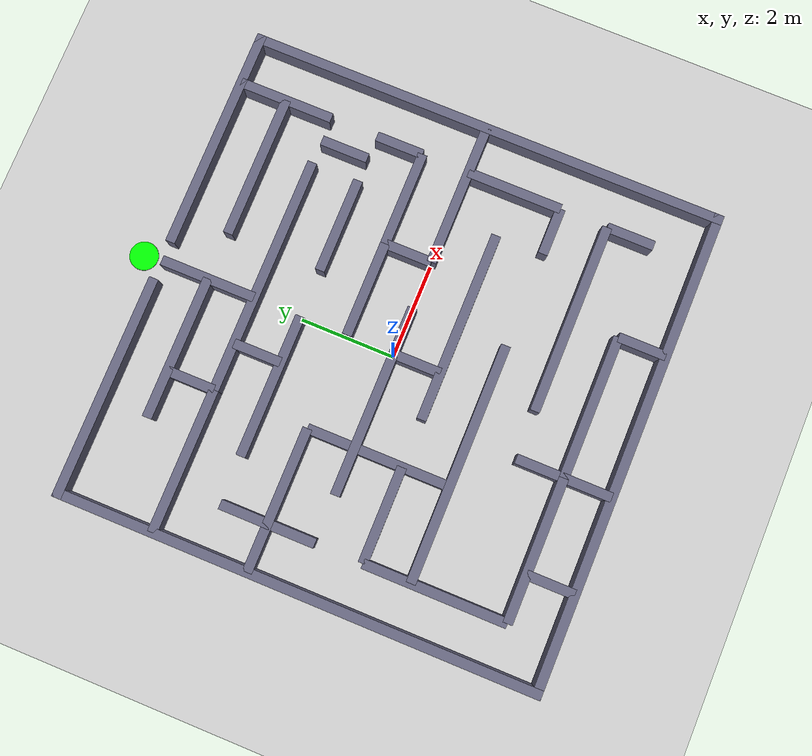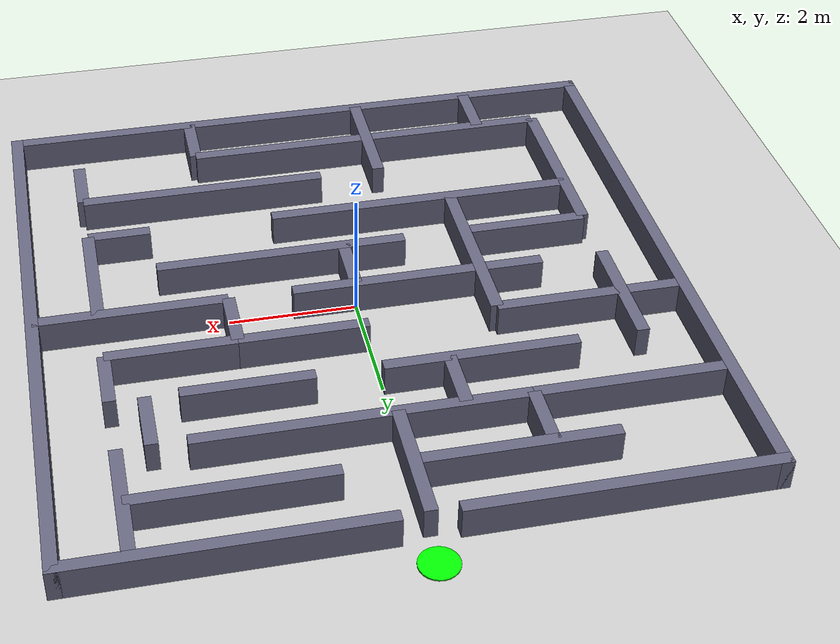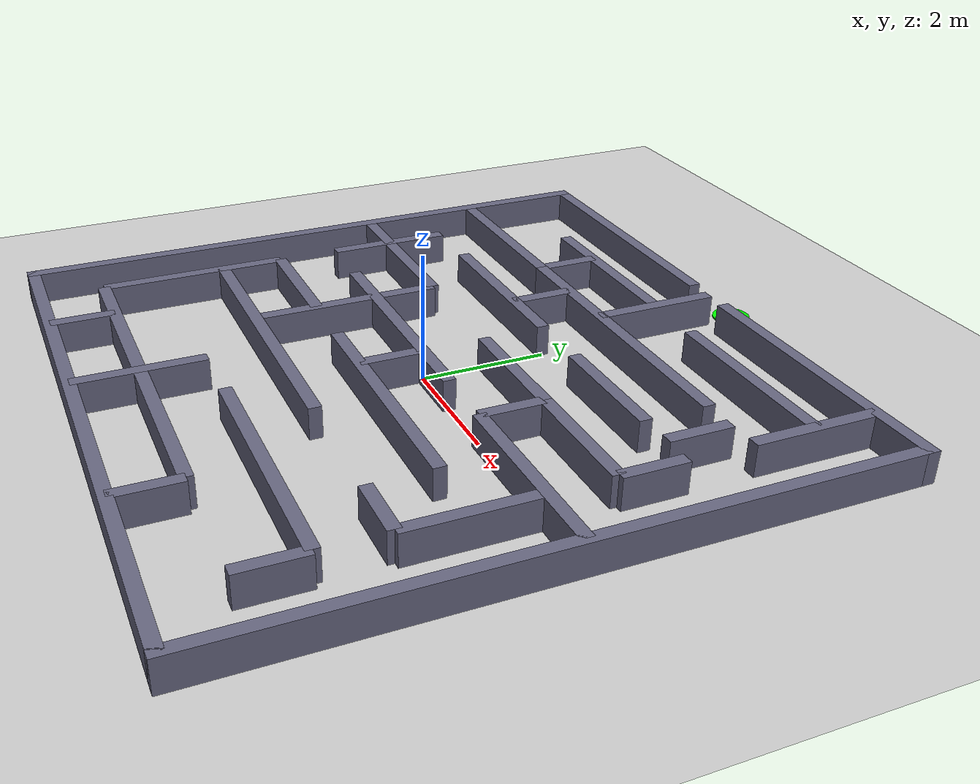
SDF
<?xml version="1.0" ?>
<sdf version="1.8">
  <world name="course_world">

    <!-- Physics (500 Hz) -->
    <physics name="500hz" type="dart">
      <max_step_size>0.002</max_step_size>
      <real_time_factor>1.0</real_time_factor>
      <real_time_update_rate>500</real_time_update_rate>
    </physics>

    <!-- Plugins -->
    <plugin filename="gz-sim-physics-system" name="gz::sim::systems::Physics"/>
    <plugin filename="gz-sim-sensors-system" name="gz::sim::systems::Sensors">
      <render_engine>ogre2</render_engine>
    </plugin>
    <plugin filename="gz-sim-user-commands-system" name="gz::sim::systems::UserCommands"/>
    <plugin filename="gz-sim-scene-broadcaster-system" name="gz::sim::systems::SceneBroadcaster"/>
    <plugin filename="gz-sim-contact-system" name="gz::sim::systems::Contact"/>

    <!-- Lighting -->
    <light type="directional" name="sun">
      <cast_shadows>false</cast_shadows>
      <pose>0 0 10 0 0 0</pose>
      <diffuse>0.8 0.8 0.8 1</diffuse>
      <specular>0.2 0.2 0.2 1</specular>
      <attenuation>
        <range>1000</range>
        <constant>0.9</constant>
        <linear>0.01</linear>
        <quadratic>0.001</quadratic>
      </attenuation>
      <direction>-0.5 0.1 -0.9</direction>
    </light>

    <!-- Ground Plane -->
    <model name="ground_plane">
      <static>true</static>
      <link name="link">
        <collision name="collision">
          <geometry>
            <plane>
              <normal>0 0 1</normal>
              <size>100 100</size>
            </plane>
          </geometry>
        </collision>
        <visual name="visual">
          <geometry>
            <plane>
              <normal>0 0 1</normal>
              <size>100 100</size>
            </plane>
          </geometry>
          <material>
            <ambient>0.8 0.8 0.8 1</ambient>
            <diffuse>0.8 0.8 0.8 1</diffuse>
            <specular>0.8 0.8 0.8 1</specular>
          </material>
        </visual>
      </link>
    </model>
    <model name="wall_1">
      <static>true</static>
      <pose>0 -5 0.25 0 0 0.0</pose>
      <link name="link">
        <collision name="collision">
          <geometry>
            <box>
              <size>10.2 0.2 0.5</size>
            </box>
          </geometry>
        </collision>
        <visual name="visual">
          <geometry>
            <box>
              <size>10.2 0.2 0.5</size>
            </box>
          </geometry>
          <material>
            <ambient>0.4 0.4 0.5 1</ambient>
            <diffuse>0.4 0.4 0.5 1</diffuse>
          </material>
        </visual>
      </link>
    </model>
    <model name="wall_2">
      <static>true</static>
      <pose>-2.75 5 0.25 0 0 0.0</pose>
      <link name="link">
        <collision name="collision">
          <geometry>
            <box>
              <size>4.7 0.2 0.5</size>
            </box>
          </geometry>
        </collision>
        <visual name="visual">
          <geometry>
            <box>
              <size>4.7 0.2 0.5</size>
            </box>
          </geometry>
          <material>
            <ambient>0.4 0.4 0.5 1</ambient>
            <diffuse>0.4 0.4 0.5 1</diffuse>
          </material>
        </visual>
      </link>
    </model>
    <model name="wall_3">
      <static>true</static>
      <pose>2.75 5 0.25 0 0 0.0</pose>
      <link name="link">
        <collision name="collision">
          <geometry>
            <box>
              <size>4.7 0.2 0.5</size>
            </box>
          </geometry>
        </collision>
        <visual name="visual">
          <geometry>
            <box>
              <size>4.7 0.2 0.5</size>
            </box>
          </geometry>
          <material>
            <ambient>0.4 0.4 0.5 1</ambient>
            <diffuse>0.4 0.4 0.5 1</diffuse>
          </material>
        </visual>
      </link>
    </model>
    <model name="wall_4">
      <static>true</static>
      <pose>-5 0 0.25 0 0 1.5708</pose>
      <link name="link">
        <collision name="collision">
          <geometry>
            <box>
              <size>10.2 0.2 0.5</size>
            </box>
          </geometry>
        </collision>
        <visual name="visual">
          <geometry>
            <box>
              <size>10.2 0.2 0.5</size>
            </box>
          </geometry>
          <material>
            <ambient>0.4 0.4 0.5 1</ambient>
            <diffuse>0.4 0.4 0.5 1</diffuse>
          </material>
        </visual>
      </link>
    </model>
    <model name="wall_5">
      <static>true</static>
      <pose>5 0 0.25 0 0 1.5708</pose>
      <link name="link">
        <collision name="collision">
          <geometry>
            <box>
              <size>10.2 0.2 0.5</size>
            </box>
          </geometry>
        </collision>
        <visual name="visual">
          <geometry>
            <box>
              <size>10.2 0.2 0.5</size>
            </box>
          </geometry>
          <material>
            <ambient>0.4 0.4 0.5 1</ambient>
            <diffuse>0.4 0.4 0.5 1</diffuse>
          </material>
        </visual>
      </link>
    </model>
    <model name="wall_6">
      <static>true</static>
      <pose>0.5 -4 0.25 0 0 0.0</pose>
      <link name="link">
        <collision name="collision">
          <geometry>
            <box>
              <size>3.0 0.2 0.5</size>
            </box>
          </geometry>
        </collision>
        <visual name="visual">
          <geometry>
            <box>
              <size>3.0 0.2 0.5</size>
            </box>
          </geometry>
          <material>
            <ambient>0.4 0.4 0.5 1</ambient>
            <diffuse>0.4 0.4 0.5 1</diffuse>
          </material>
        </visual>
      </link>
    </model>
    <model name="wall_7">
      <static>true</static>
      <pose>-2.5 -4 0.25 0 0 0.0</pose>
      <link name="link">
        <collision name="collision">
          <geometry>
            <box>
              <size>3.0 0.2 0.5</size>
            </box>
          </geometry>
        </collision>
        <visual name="visual">
          <geometry>
            <box>
              <size>3.0 0.2 0.5</size>
            </box>
          </geometry>
          <material>
            <ambient>0.4 0.4 0.5 1</ambient>
            <diffuse>0.4 0.4 0.5 1</diffuse>
          </material>
        </visual>
      </link>
    </model>
    <model name="wall_8">
      <static>true</static>
      <pose>2.0 -3 0.25 0 0 0.0</pose>
      <link name="link">
        <collision name="collision">
          <geometry>
            <box>
              <size>4.0 0.2 0.5</size>
            </box>
          </geometry>
        </collision>
        <visual name="visual">
          <geometry>
            <box>
              <size>4.0 0.2 0.5</size>
            </box>
          </geometry>
          <material>
            <ambient>0.4 0.4 0.5 1</ambient>
            <diffuse>0.4 0.4 0.5 1</diffuse>
          </material>
        </visual>
      </link>
    </model>
    <model name="wall_9">
      <static>true</static>
      <pose>-1.5 -2 0.25 0 0 0.0</pose>
      <link name="link">
        <collision name="collision">
          <geometry>
            <box>
              <size>5.0 0.2 0.5</size>
            </box>
          </geometry>
        </collision>
        <visual name="visual">
          <geometry>
            <box>
              <size>5.0 0.2 0.5</size>
            </box>
          </geometry>
          <material>
            <ambient>0.4 0.4 0.5 1</ambient>
            <diffuse>0.4 0.4 0.5 1</diffuse>
          </material>
        </visual>
      </link>
    </model>
    <model name="wall_10">
      <static>true</static>
      <pose>3.5 -2 0.25 0 0 0.0</pose>
      <link name="link">
        <collision name="collision">
          <geometry>
            <box>
              <size>1.0 0.2 0.5</size>
            </box>
          </geometry>
        </collision>
        <visual name="visual">
          <geometry>
            <box>
              <size>1.0 0.2 0.5</size>
            </box>
          </geometry>
          <material>
            <ambient>0.4 0.4 0.5 1</ambient>
            <diffuse>0.4 0.4 0.5 1</diffuse>
          </material>
        </visual>
      </link>
    </model>
    <model name="wall_11">
      <static>true</static>
      <pose>-3.0 -1 0.25 0 0 0.0</pose>
      <link name="link">
        <collision name="collision">
          <geometry>
            <box>
              <size>2.0 0.2 0.5</size>
            </box>
          </geometry>
        </collision>
        <visual name="visual">
          <geometry>
            <box>
              <size>2.0 0.2 0.5</size>
            </box>
          </geometry>
          <material>
            <ambient>0.4 0.4 0.5 1</ambient>
            <diffuse>0.4 0.4 0.5 1</diffuse>
          </material>
        </visual>
      </link>
    </model>
    <model name="wall_12">
      <static>true</static>
      <pose>1.0 -1 0.25 0 0 0.0</pose>
      <link name="link">
        <collision name="collision">
          <geometry>
            <box>
              <size>4.0 0.2 0.5</size>
            </box>
          </geometry>
        </collision>
        <visual name="visual">
          <geometry>
            <box>
              <size>4.0 0.2 0.5</size>
            </box>
          </geometry>
          <material>
            <ambient>0.4 0.4 0.5 1</ambient>
            <diffuse>0.4 0.4 0.5 1</diffuse>
          </material>
        </visual>
      </link>
    </model>
    <model name="wall_13">
      <static>true</static>
      <pose>-1.0 0 0.25 0 0 0.0</pose>
      <link name="link">
        <collision name="collision">
          <geometry>
            <box>
              <size>4.0 0.2 0.5</size>
            </box>
          </geometry>
        </collision>
        <visual name="visual">
          <geometry>
            <box>
              <size>4.0 0.2 0.5</size>
            </box>
          </geometry>
          <material>
            <ambient>0.4 0.4 0.5 1</ambient>
            <diffuse>0.4 0.4 0.5 1</diffuse>
          </material>
        </visual>
      </link>
    </model>
    <model name="wall_14">
      <static>true</static>
      <pose>3.5 0 0.25 0 0 0.0</pose>
      <link name="link">
        <collision name="collision">
          <geometry>
            <box>
              <size>3.0 0.2 0.5</size>
            </box>
          </geometry>
        </collision>
        <visual name="visual">
          <geometry>
            <box>
              <size>3.0 0.2 0.5</size>
            </box>
          </geometry>
          <material>
            <ambient>0.4 0.4 0.5 1</ambient>
            <diffuse>0.4 0.4 0.5 1</diffuse>
          </material>
        </visual>
      </link>
    </model>
    <model name="wall_15">
      <static>true</static>
      <pose>-3.5 1 0.25 0 0 0.0</pose>
      <link name="link">
        <collision name="collision">
          <geometry>
            <box>
              <size>3.0 0.2 0.5</size>
            </box>
          </geometry>
        </collision>
        <visual name="visual">
          <geometry>
            <box>
              <size>3.0 0.2 0.5</size>
            </box>
          </geometry>
          <material>
            <ambient>0.4 0.4 0.5 1</ambient>
            <diffuse>0.4 0.4 0.5 1</diffuse>
          </material>
        </visual>
      </link>
    </model>
    <model name="wall_16">
      <static>true</static>
      <pose>1.0 1 0.25 0 0 0.0</pose>
      <link name="link">
        <collision name="collision">
          <geometry>
            <box>
              <size>2.0 0.2 0.5</size>
            </box>
          </geometry>
        </collision>
        <visual name="visual">
          <geometry>
            <box>
              <size>2.0 0.2 0.5</size>
            </box>
          </geometry>
          <material>
            <ambient>0.4 0.4 0.5 1</ambient>
            <diffuse>0.4 0.4 0.5 1</diffuse>
          </material>
        </visual>
      </link>
    </model>
    <model name="wall_17">
      <static>true</static>
      <pose>3.0 1 0.25 0 0 0.0</pose>
      <link name="link">
        <collision name="collision">
          <geometry>
            <box>
              <size>2.0 0.2 0.5</size>
            </box>
          </geometry>
        </collision>
        <visual name="visual">
          <geometry>
            <box>
              <size>2.0 0.2 0.5</size>
            </box>
          </geometry>
          <material>
            <ambient>0.4 0.4 0.5 1</ambient>
            <diffuse>0.4 0.4 0.5 1</diffuse>
          </material>
        </visual>
      </link>
    </model>
    <model name="wall_18">
      <static>true</static>
      <pose>-1.5 2 0.25 0 0 0.0</pose>
      <link name="link">
        <collision name="collision">
          <geometry>
            <box>
              <size>3.0 0.2 0.5</size>
            </box>
          </geometry>
        </collision>
        <visual name="visual">
          <geometry>
            <box>
              <size>3.0 0.2 0.5</size>
            </box>
          </geometry>
          <material>
            <ambient>0.4 0.4 0.5 1</ambient>
            <diffuse>0.4 0.4 0.5 1</diffuse>
          </material>
        </visual>
      </link>
    </model>
    <model name="wall_19">
      <static>true</static>
      <pose>2.0 2 0.25 0 0 0.0</pose>
      <link name="link">
        <collision name="collision">
          <geometry>
            <box>
              <size>2.0 0.2 0.5</size>
            </box>
          </geometry>
        </collision>
        <visual name="visual">
          <geometry>
            <box>
              <size>2.0 0.2 0.5</size>
            </box>
          </geometry>
          <material>
            <ambient>0.4 0.4 0.5 1</ambient>
            <diffuse>0.4 0.4 0.5 1</diffuse>
          </material>
        </visual>
      </link>
    </model>
    <model name="wall_20">
      <static>true</static>
      <pose>-3.5 3 0.25 0 0 0.0</pose>
      <link name="link">
        <collision name="collision">
          <geometry>
            <box>
              <size>3.0 0.2 0.5</size>
            </box>
          </geometry>
        </collision>
        <visual name="visual">
          <geometry>
            <box>
              <size>3.0 0.2 0.5</size>
            </box>
          </geometry>
          <material>
            <ambient>0.4 0.4 0.5 1</ambient>
            <diffuse>0.4 0.4 0.5 1</diffuse>
          </material>
        </visual>
      </link>
    </model>
    <model name="wall_21">
      <static>true</static>
      <pose>0.5 3 0.25 0 0 0.0</pose>
      <link name="link">
        <collision name="collision">
          <geometry>
            <box>
              <size>5.0 0.2 0.5</size>
            </box>
          </geometry>
        </collision>
        <visual name="visual">
          <geometry>
            <box>
              <size>5.0 0.2 0.5</size>
            </box>
          </geometry>
          <material>
            <ambient>0.4 0.4 0.5 1</ambient>
            <diffuse>0.4 0.4 0.5 1</diffuse>
          </material>
        </visual>
      </link>
    </model>
    <model name="wall_22">
      <static>true</static>
      <pose>-1.5 4 0.25 0 0 0.0</pose>
      <link name="link">
        <collision name="collision">
          <geometry>
            <box>
              <size>3.0 0.2 0.5</size>
            </box>
          </geometry>
        </collision>
        <visual name="visual">
          <geometry>
            <box>
              <size>3.0 0.2 0.5</size>
            </box>
          </geometry>
          <material>
            <ambient>0.4 0.4 0.5 1</ambient>
            <diffuse>0.4 0.4 0.5 1</diffuse>
          </material>
        </visual>
      </link>
    </model>
    <model name="wall_23">
      <static>true</static>
      <pose>2.5 4 0.25 0 0 0.0</pose>
      <link name="link">
        <collision name="collision">
          <geometry>
            <box>
              <size>3.0 0.2 0.5</size>
            </box>
          </geometry>
        </collision>
        <visual name="visual">
          <geometry>
            <box>
              <size>3.0 0.2 0.5</size>
            </box>
          </geometry>
          <material>
            <ambient>0.4 0.4 0.5 1</ambient>
            <diffuse>0.4 0.4 0.5 1</diffuse>
          </material>
        </visual>
      </link>
    </model>
    <model name="wall_24">
      <static>true</static>
      <pose>-3.0 -4.5 0.25 0 0 1.5708</pose>
      <link name="link">
        <collision name="collision">
          <geometry>
            <box>
              <size>1.0 0.2 0.5</size>
            </box>
          </geometry>
        </collision>
        <visual name="visual">
          <geometry>
            <box>
              <size>1.0 0.2 0.5</size>
            </box>
          </geometry>
          <material>
            <ambient>0.4 0.4 0.5 1</ambient>
            <diffuse>0.4 0.4 0.5 1</diffuse>
          </material>
        </visual>
      </link>
    </model>
    <model name="wall_25">
      <static>true</static>
      <pose>-1.0 -4.0 0.25 0 0 1.5708</pose>
      <link name="link">
        <collision name="collision">
          <geometry>
            <box>
              <size>2.0 0.2 0.5</size>
            </box>
          </geometry>
        </collision>
        <visual name="visual">
          <geometry>
            <box>
              <size>2.0 0.2 0.5</size>
            </box>
          </geometry>
          <material>
            <ambient>0.4 0.4 0.5 1</ambient>
            <diffuse>0.4 0.4 0.5 1</diffuse>
          </material>
        </visual>
      </link>
    </model>
    <model name="wall_26">
      <static>true</static>
      <pose>2.0 -4.5 0.25 0 0 1.5708</pose>
      <link name="link">
        <collision name="collision">
          <geometry>
            <box>
              <size>1.0 0.2 0.5</size>
            </box>
          </geometry>
        </collision>
        <visual name="visual">
          <geometry>
            <box>
              <size>1.0 0.2 0.5</size>
            </box>
          </geometry>
          <material>
            <ambient>0.4 0.4 0.5 1</ambient>
            <diffuse>0.4 0.4 0.5 1</diffuse>
          </material>
        </visual>
      </link>
    </model>
    <model name="wall_27">
      <static>true</static>
      <pose>4.0 -3.5 0.25 0 0 1.5708</pose>
      <link name="link">
        <collision name="collision">
          <geometry>
            <box>
              <size>1.0 0.2 0.5</size>
            </box>
          </geometry>
        </collision>
        <visual name="visual">
          <geometry>
            <box>
              <size>1.0 0.2 0.5</size>
            </box>
          </geometry>
          <material>
            <ambient>0.4 0.4 0.5 1</ambient>
            <diffuse>0.4 0.4 0.5 1</diffuse>
          </material>
        </visual>
      </link>
    </model>
    <model name="wall_28">
      <static>true</static>
      <pose>-4.0 -2.5 0.25 0 0 1.5708</pose>
      <link name="link">
        <collision name="collision">
          <geometry>
            <box>
              <size>3.0 0.2 0.5</size>
            </box>
          </geometry>
        </collision>
        <visual name="visual">
          <geometry>
            <box>
              <size>3.0 0.2 0.5</size>
            </box>
          </geometry>
          <material>
            <ambient>0.4 0.4 0.5 1</ambient>
            <diffuse>0.4 0.4 0.5 1</diffuse>
          </material>
        </visual>
      </link>
    </model>
    <model name="wall_29">
      <static>true</static>
      <pose>4.0 -1.0 0.25 0 0 1.5708</pose>
      <link name="link">
        <collision name="collision">
          <geometry>
            <box>
              <size>2.0 0.2 0.5</size>
            </box>
          </geometry>
        </collision>
        <visual name="visual">
          <geometry>
            <box>
              <size>2.0 0.2 0.5</size>
            </box>
          </geometry>
          <material>
            <ambient>0.4 0.4 0.5 1</ambient>
            <diffuse>0.4 0.4 0.5 1</diffuse>
          </material>
        </visual>
      </link>
    </model>
    <model name="wall_30">
      <static>true</static>
      <pose>-2.0 -0.5 0.25 0 0 1.5708</pose>
      <link name="link">
        <collision name="collision">
          <geometry>
            <box>
              <size>3.0 0.2 0.5</size>
            </box>
          </geometry>
        </collision>
        <visual name="visual">
          <geometry>
            <box>
              <size>3.0 0.2 0.5</size>
            </box>
          </geometry>
          <material>
            <ambient>0.4 0.4 0.5 1</ambient>
            <diffuse>0.4 0.4 0.5 1</diffuse>
          </material>
        </visual>
      </link>
    </model>
    <model name="wall_31">
      <static>true</static>
      <pose>0.0 -0.5 0.25 0 0 1.5708</pose>
      <link name="link">
        <collision name="collision">
          <geometry>
            <box>
              <size>1.0 0.2 0.5</size>
            </box>
          </geometry>
        </collision>
        <visual name="visual">
          <geometry>
            <box>
              <size>1.0 0.2 0.5</size>
            </box>
          </geometry>
          <material>
            <ambient>0.4 0.4 0.5 1</ambient>
            <diffuse>0.4 0.4 0.5 1</diffuse>
          </material>
        </visual>
      </link>
    </model>
    <model name="wall_32">
      <static>true</static>
      <pose>-4.0 1.0 0.25 0 0 1.5708</pose>
      <link name="link">
        <collision name="collision">
          <geometry>
            <box>
              <size>2.0 0.2 0.5</size>
            </box>
          </geometry>
        </collision>
        <visual name="visual">
          <geometry>
            <box>
              <size>2.0 0.2 0.5</size>
            </box>
          </geometry>
          <material>
            <ambient>0.4 0.4 0.5 1</ambient>
            <diffuse>0.4 0.4 0.5 1</diffuse>
          </material>
        </visual>
      </link>
    </model>
    <model name="wall_33">
      <static>true</static>
      <pose>2.0 0.5 0.25 0 0 1.5708</pose>
      <link name="link">
        <collision name="collision">
          <geometry>
            <box>
              <size>1.0 0.2 0.5</size>
            </box>
          </geometry>
        </collision>
        <visual name="visual">
          <geometry>
            <box>
              <size>1.0 0.2 0.5</size>
            </box>
          </geometry>
          <material>
            <ambient>0.4 0.4 0.5 1</ambient>
            <diffuse>0.4 0.4 0.5 1</diffuse>
          </material>
        </visual>
      </link>
    </model>
    <model name="wall_34">
      <static>true</static>
      <pose>4.0 1.5 0.25 0 0 1.5708</pose>
      <link name="link">
        <collision name="collision">
          <geometry>
            <box>
              <size>1.0 0.2 0.5</size>
            </box>
          </geometry>
        </collision>
        <visual name="visual">
          <geometry>
            <box>
              <size>1.0 0.2 0.5</size>
            </box>
          </geometry>
          <material>
            <ambient>0.4 0.4 0.5 1</ambient>
            <diffuse>0.4 0.4 0.5 1</diffuse>
          </material>
        </visual>
      </link>
    </model>
    <model name="wall_35">
      <static>true</static>
      <pose>-1.0 2.5 0.25 0 0 1.5708</pose>
      <link name="link">
        <collision name="collision">
          <geometry>
            <box>
              <size>1.0 0.2 0.5</size>
            </box>
          </geometry>
        </collision>
        <visual name="visual">
          <geometry>
            <box>
              <size>1.0 0.2 0.5</size>
            </box>
          </geometry>
          <material>
            <ambient>0.4 0.4 0.5 1</ambient>
            <diffuse>0.4 0.4 0.5 1</diffuse>
          </material>
        </visual>
      </link>
    </model>
    <model name="wall_36">
      <static>true</static>
      <pose>3.5 2.5 0.25 0 0 1.5708</pose>
      <link name="link">
        <collision name="collision">
          <geometry>
            <box>
              <size>1.0 0.2 0.5</size>
            </box>
          </geometry>
        </collision>
        <visual name="visual">
          <geometry>
            <box>
              <size>1.0 0.2 0.5</size>
            </box>
          </geometry>
          <material>
            <ambient>0.4 0.4 0.5 1</ambient>
            <diffuse>0.4 0.4 0.5 1</diffuse>
          </material>
        </visual>
      </link>
    </model>
    <model name="wall_37">
      <static>true</static>
      <pose>-2.0 3.5 0.25 0 0 1.5708</pose>
      <link name="link">
        <collision name="collision">
          <geometry>
            <box>
              <size>1.0 0.2 0.5</size>
            </box>
          </geometry>
        </collision>
        <visual name="visual">
          <geometry>
            <box>
              <size>1.0 0.2 0.5</size>
            </box>
          </geometry>
          <material>
            <ambient>0.4 0.4 0.5 1</ambient>
            <diffuse>0.4 0.4 0.5 1</diffuse>
          </material>
        </visual>
      </link>
    </model>
    <model name="wall_38">
      <static>true</static>
      <pose>0.0 4.0 0.25 0 0 1.5708</pose>
      <link name="link">
        <collision name="collision">
          <geometry>
            <box>
              <size>2.0 0.2 0.5</size>
            </box>
          </geometry>
        </collision>
        <visual name="visual">
          <geometry>
            <box>
              <size>2.0 0.2 0.5</size>
            </box>
          </geometry>
          <material>
            <ambient>0.4 0.4 0.5 1</ambient>
            <diffuse>0.4 0.4 0.5 1</diffuse>
          </material>
        </visual>
      </link>
    </model>
    <model name="wall_39">
      <static>true</static>
      <pose>4.0 4.0 0.25 0 0 1.5708</pose>
      <link name="link">
        <collision name="collision">
          <geometry>
            <box>
              <size>2.0 0.2 0.5</size>
            </box>
          </geometry>
        </collision>
        <visual name="visual">
          <geometry>
            <box>
              <size>2.0 0.2 0.5</size>
            </box>
          </geometry>
          <material>
            <ambient>0.4 0.4 0.5 1</ambient>
            <diffuse>0.4 0.4 0.5 1</diffuse>
          </material>
        </visual>
      </link>
    </model>
    <model name="goal_marker">
      <static>true</static>
      <pose>0 5.5 0.01 0 0 0</pose>
      <link name="link">
        <visual name="visual">
          <geometry>
            <cylinder>
              <radius>0.3</radius>
              <length>0.02</length>
            </cylinder>
          </geometry>
          <material>
            <ambient>0 1 0 1</ambient>
            <diffuse>0 1 0 1</diffuse>
          </material>
        </visual>
      </link>
    </model>

  </world>
</sdf>
